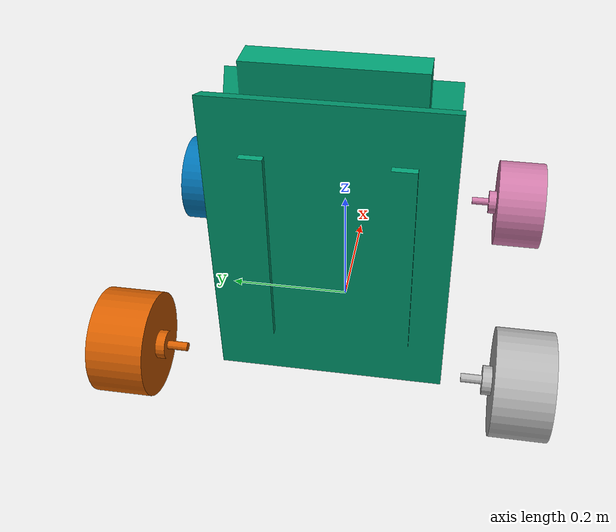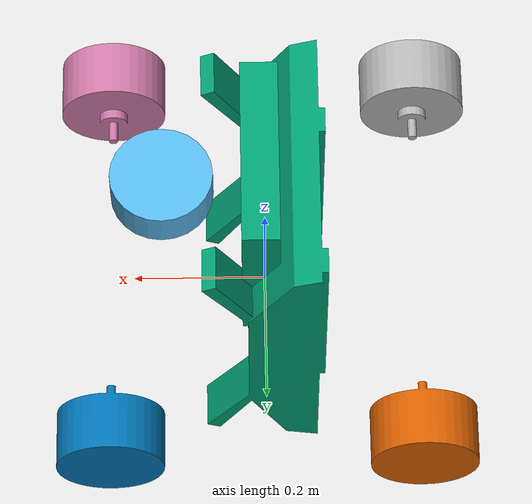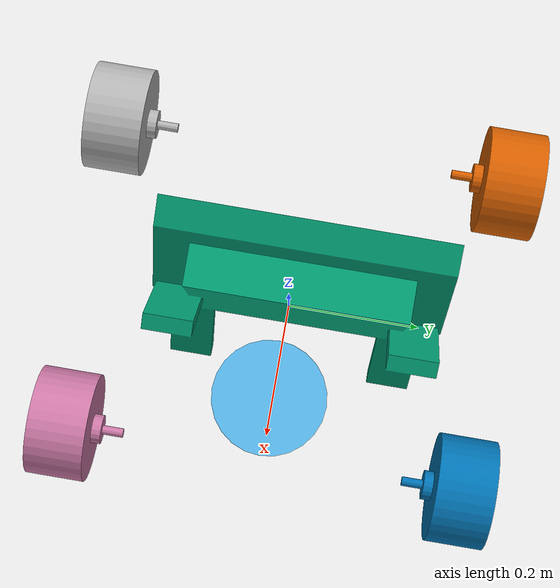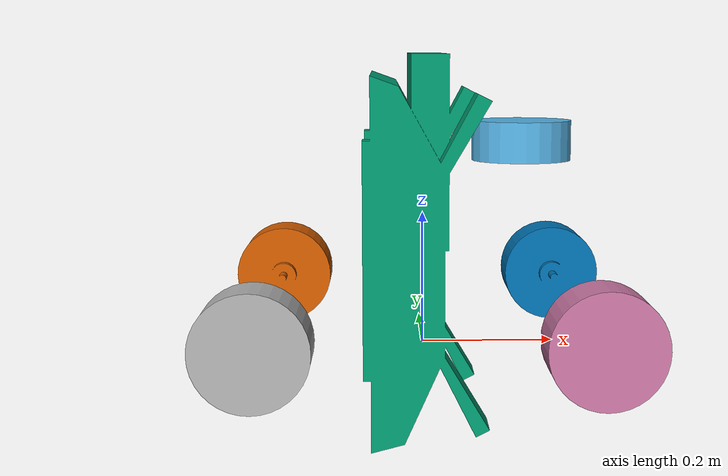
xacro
<?xml version="1.0"?>

<robot name="scout_v2" xmlns:xacro="http://ros.org/wiki/xacro">

	<!-- odometry source: world ground truth or wheels encoders -->
	<xacro:arg name="odometry_source" default="ground_truth" />

	<!-- load gazebo xacro -->
	<xacro:arg name="load_gazebo" default="true" />

	<xacro:arg name="simulation" default="true" />

	<xacro:include filename="$(find robot_description_nav)/urdf/mobile_robot/scout_mini_compat.xacro" />
	<xacro:scout_mini_compat odometry_source="$(arg odometry_source)" load_gazebo="$(arg load_gazebo)" />

	<xacro:unless value="$(arg simulation)">

		<!-- addition of OS1 sensor when loading the real Scout -->
		<xacro:include filename="$(find robot_description_nav)/urdf/sensors/os1.urdf" />

		<joint name="os1_joint" type="fixed">
			<origin xyz="0.2 0.0 0.64" rpy="0.0 0.0 0.0" />
			<parent link="mobile_robot_base_link" />
			<child link="os_sensor" />
		</joint>

	</xacro:unless>

</robot>

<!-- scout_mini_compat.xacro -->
<robot xmlns:xacro="http://ros.org/wiki/xacro" name="scout_mini">

  <xacro:macro name="mini_wheel" params="name flip:=0.0">
    <link name="${name}_wheel_link">
      <inertial>
        <mass value="3"/>
        <origin xyz="0 0 0"/>
        <inertia ixx="0.7171" ixy="0" ixz="0" iyy="0.7171" iyz="0" izz="0.1361"/>
      </inertial>

      <visual>
        <origin xyz="0 0 0" rpy="${flip} 0 0" />
        <geometry>
          <mesh filename="file://$(find robot_description_nav)/meshes/scout_mini_mesh/wheel.dae" />
        </geometry>
      </visual>

      <collision>
        <origin xyz="0 0 0" rpy="${flip} 0 0" />
        <geometry>
          <mesh filename="file://$(find robot_description_nav)/meshes/mobile_robot/1_Link.STL" />
        </geometry>
      </collision>

    </link>
  </xacro:macro>
  <xacro:macro name="scout_mini_compat" params="odometry_source load_gazebo">

    <xacro:property name="track" value="0.490"/>
    <xacro:property name="wheel_radius" value="0.160"/>
    <xacro:property name="left_y_offset" value="0.0"/>

    <xacro:property name="wheel_x" value="0.2319755"/>
    <xacro:property name="wheel_y" value="0.2082515"/>
    <xacro:property name="wheel_z" value="-0.099998"/>

    <xacro:property name="base_x_size" value="0.65"/>
    <xacro:property name="base_y_size" value="0.45"/>
    <xacro:property name="base_z_size" value="0.22"/>

    <xacro:arg name="lidar_type" default="3d"/>
    <xacro:property name="lidar_type" value="$(arg lidar_type)"/>

    <xacro:if value="${lidar_type == '2d'}">
      <xacro:property name="lidar" value="lidar_2d"/>
    </xacro:if>

    <xacro:if value="${lidar_type == '3d'}">
      <xacro:property name="lidar" value="lidar_3d"/>
    </xacro:if>

    <link name="base_footprint"/>

    <joint name="base_footprint_to_base_link" type="fixed">
      <origin xyz="0 0 0.16" rpy="0 0 0"/>
      <parent link="base_footprint"/>
      <child link="base_link"/>
    </joint>

    <link name="base_link"/>

    <joint name="base_link_to_mobile_robot" type="fixed">
      <origin xyz="0 0 0" rpy="0 0 0"/>
      <parent link="base_link"/>
      <child link="mobile_robot_base_link"/>
    </joint>

    <link name="mobile_robot_base_link">
      <visual>
        <origin xyz="0 0 0" rpy="1.57 0 -1.57"/>
        <geometry>
          <mesh filename="file://$(find robot_description_nav)/meshes/scout_mini_mesh/scout_mini_base_link.dae"/>
        </geometry>
      </visual>
      <collision>
        <origin xyz="0 0 0" rpy="1.57 0 -1.57"/>
        <geometry>
          <mesh filename="file://$(find robot_description_nav)/meshes/mobile_robot/scout_mini_base_link.STL"/>
        </geometry>
      </collision>
      <collision>
        <origin xyz="0 0 0.08" rpy="0 0 0"/>
        <geometry>
          <box size="${base_x_size} ${base_y_size} ${base_z_size}"/>
        </geometry>
      </collision>
    </link>

    <link name="inertial_link">
      <inertial>
        <mass value="132.3898489950015"/>
        <origin xyz="0 0 0"/>
        <inertia
          ixx="0.185196122711036"
          ixy="4.30144213829512E-08"
          ixz="5.81037523686401E-08"
          iyy="0.364893736238929"
          iyz="-0.000386720198091934"
          izz="0.223868521722778"/>
      </inertial>
    </link>

    <joint name="inertial_joint" type="fixed">
      <origin xyz="0 0 0" rpy="0 0 0"/>
      <parent link="mobile_robot_base_link"/>
      <child link="inertial_link"/>
    </joint>

    <xacro:mini_wheel name="front_left"  flip="${pi}" />
    <xacro:mini_wheel name="rear_left"   flip="${pi}" />
    <xacro:mini_wheel name="front_right" flip="0.0" />
    <xacro:mini_wheel name="rear_right"  flip="0.0" />

    <xacro:if value="${load_gazebo}">

      <joint name="front_left_wheel" type="continuous">
        <origin rpy="1.57 0 0" xyz="${wheel_x} ${wheel_y + left_y_offset} ${wheel_z}"/>
        <parent link="mobile_robot_base_link"/>
        <child link="front_left_wheel_link"/>
        <axis xyz="0 0 -1"/>
      </joint>

      <joint name="front_right_wheel" type="continuous">
        <origin rpy="1.57 0 0" xyz="${wheel_x} ${-wheel_y} ${wheel_z}"/>
        <parent link="mobile_robot_base_link"/>
        <child link="front_right_wheel_link"/>
        <axis xyz="0 0 -1"/>
      </joint>

      <joint name="rear_left_wheel" type="continuous">
        <origin rpy="1.57 0 0" xyz="${-wheel_x} ${wheel_y + left_y_offset} ${wheel_z}"/>
        <parent link="mobile_robot_base_link"/>
        <child link="rear_left_wheel_link"/>
        <axis xyz="0 0 -1"/>
      </joint>

      <joint name="rear_right_wheel" type="continuous">
        <origin rpy="1.57 0 0" xyz="${-wheel_x} ${-wheel_y} ${wheel_z}"/>
        <parent link="mobile_robot_base_link"/>
        <child link="rear_right_wheel_link"/>
        <axis xyz="0 0 -1"/>
      </joint>

      <gazebo>
        <plugin filename="ignition-gazebo-sensors-system"
                name="ignition::gazebo::systems::Sensors">
          <render_engine>ogre2</render_engine>
        </plugin>

        <plugin filename="ignition-gazebo-imu-system"
                name="ignition::gazebo::systems::Imu" />

        <plugin filename="ignition-gazebo-joint-state-publisher-system"
                name="ignition::gazebo::systems::JointStatePublisher" />
      </gazebo>

      <gazebo>
        <plugin filename="ignition-gazebo-diff-drive-system"
                name="ignition::gazebo::systems::DiffDrive">
          <left_joint>front_left_wheel</left_joint>
          <left_joint>rear_left_wheel</left_joint>
          <right_joint>front_right_wheel</right_joint>
          <right_joint>rear_right_wheel</right_joint>

          <wheel_separation>${track}</wheel_separation>
          <wheel_radius>${wheel_radius}</wheel_radius>

          <topic>/cmd_vel</topic>

          <xacro:if value="${odometry_source == 'encoders'}">
            <odom_topic>/odom</odom_topic>
            <odom_publish_frequency>50</odom_publish_frequency>
            <tf_topic>/tf</tf_topic>
          </xacro:if>

          <frame_id>odom_leader</frame_id>
          <child_frame_id>base_footprint</child_frame_id>

          <max_linear_acceleration>2</max_linear_acceleration>
          <min_linear_acceleration>-2</min_linear_acceleration>
          <max_angular_acceleration>1</max_angular_acceleration>
          <min_angular_acceleration>-1</min_angular_acceleration>
          <max_linear_velocity>10</max_linear_velocity>
          <min_linear_velocity>-10</min_linear_velocity>
          <max_angular_velocity>1</max_angular_velocity>
          <min_angular_velocity>-1</min_angular_velocity>
        </plugin>
      </gazebo>

      <gazebo reference="imu_frame">
        <sensor name="imu_sensor" type="imu">
          <always_on>1</always_on>
          <update_rate>50</update_rate>
          <ignition_frame_id>imu_frame</ignition_frame_id>
          <visualize>true</visualize>
          <topic>/imu</topic>
        </sensor>
      </gazebo>

      <xacro:if value="${odometry_source == 'ground_truth'}">
        <gazebo>
          <plugin filename="libignition-gazebo6-odometry-publisher-system"
                  name="ignition::gazebo::systems::OdometryPublisher">
            <odom_frame>odom</odom_frame>
            <robot_base_frame>base_footprint</robot_base_frame>
            <odom_topic>/odom</odom_topic>
            <tf_topic>/tf</tf_topic>
            <dimensions>2</dimensions>
            <odom_publish_frequency>50</odom_publish_frequency>
            <gaussian_noise>0.001</gaussian_noise>
          </plugin>
        </gazebo>
      </xacro:if>

      <xacro:if value="${lidar_type == '2d'}">
        <gazebo reference="lidar_2d">
          <sensor name="gpu_lidar" type="gpu_lidar">
            <topic>/scan</topic>
            <update_rate>10</update_rate>
            <ignition_frame_id>lidar_2d</ignition_frame_id>
            <lidar>
              <scan>
                <horizontal>
                  <samples>720</samples>
                  <resolution>1</resolution>
                  <min_angle>0.0</min_angle>
                  <max_angle>${2.0*pi}</max_angle>
                </horizontal>
              </scan>
              <range>
                <min>0.55</min>
                <max>16</max>
                <resolution>0.01</resolution>
              </range>
              <noise>
                <type>gaussian</type>
                <mean>0.0</mean>
                <stddev>0.001</stddev>
              </noise>
            </lidar>
            <alwaysOn>1</alwaysOn>
            <visualize>true</visualize>
          </sensor>
        </gazebo>
      </xacro:if>

      <xacro:if value="${lidar_type == '3d'}">
        <gazebo reference="lidar_3d">
          <sensor name="gpu_lidar" type="gpu_lidar">
            <topic>/pointcloud</topic>
            <update_rate>10</update_rate>
            <ignition_frame_id>lidar_3d</ignition_frame_id>
            <lidar>
              <scan>
                <horizontal>
                  <samples>1024</samples>
                  <resolution>0.001</resolution>
                  <min_angle>-3.14</min_angle>
                  <max_angle>3.14</max_angle>
                </horizontal>
                <vertical>
                  <samples>32</samples>
                  <resolution>0.001</resolution>
                  <min_angle>-0.393</min_angle>
                  <max_angle>0.393</max_angle>
                </vertical>
              </scan>
              <range>
                <min>0.5</min>
                <max>50.0</max>
                <resolution>0.005</resolution>
              </range>
              <noise>
                <type>gaussian</type>
                <mean>0.0</mean>
                <stddev>0.001</stddev>
              </noise>
            </lidar>
            <alwaysOn>1</alwaysOn>
            <visualize>true</visualize>
          </sensor>
        </gazebo>
      </xacro:if>

    </xacro:if>

    <xacro:unless value="${load_gazebo}">

      <joint name="front_left_wheel" type="fixed">
        <origin rpy="1.57 0 0" xyz="${wheel_x} ${wheel_y + left_y_offset} ${wheel_z}"/>
        <parent link="mobile_robot_base_link"/>
        <child link="front_left_wheel_link"/>
      </joint>

      <joint name="front_right_wheel" type="fixed">
        <origin rpy="1.57 0 0" xyz="${wheel_x} ${-wheel_y} ${wheel_z}"/>
        <parent link="mobile_robot_base_link"/>
        <child link="front_right_wheel_link"/>
      </joint>

      <joint name="rear_left_wheel" type="fixed">
        <origin rpy="1.57 0 0" xyz="${-wheel_x} ${wheel_y + left_y_offset} ${wheel_z}"/>
        <parent link="mobile_robot_base_link"/>
        <child link="rear_left_wheel_link"/>
      </joint>

      <joint name="rear_right_wheel" type="fixed">
        <origin rpy="1.57 0 0" xyz="${-wheel_x} ${-wheel_y} ${wheel_z}"/>
        <parent link="mobile_robot_base_link"/>
        <child link="rear_right_wheel_link"/>
      </joint>

    </xacro:unless>

    <link name="imu_frame"/>

    <joint name="mobile_robot_to_imu" type="fixed">
      <parent link="mobile_robot_base_link"/>
      <child link="imu_frame"/>
      <origin xyz="0.0 0.0 0.08" rpy="0 0 0"/>
    </joint>

    <link name="${lidar}">
      <collision>
        <origin xyz="0 0 0" rpy="0 0 0"/>
        <geometry>
          <cylinder length="0.06" radius="0.075"/>
        </geometry>
      </collision>
      <visual>
        <origin xyz="0 0 0" rpy="0 0 0"/>
        <geometry>
          <cylinder length="0.06" radius="0.075"/>
        </geometry>
      </visual>
      <inertial>
        <origin xyz="0 0 0" rpy="0 0 0"/>
        <mass value="0.1"/>
        <inertia ixx="${0.1 *(3*0.075*0.075 + 0.06*0.06)/ 12}" ixy="0" ixz="0"
                 iyy="${0.1 *(3*0.075*0.075 + 0.06*0.06)/ 12}"
                 iyz="0" izz="${0.1*0.075*0.075 / 2}"/>
      </inertial>
    </link>

    <joint name="mobile_robot_to_${lidar}" type="fixed">
      <parent link="mobile_robot_base_link"/>
      <child link="${lidar}"/>
      <origin xyz="0.15 -0.0 0.15" rpy="0 0 3.14159"/>
    </joint>

  </xacro:macro>

</robot>
